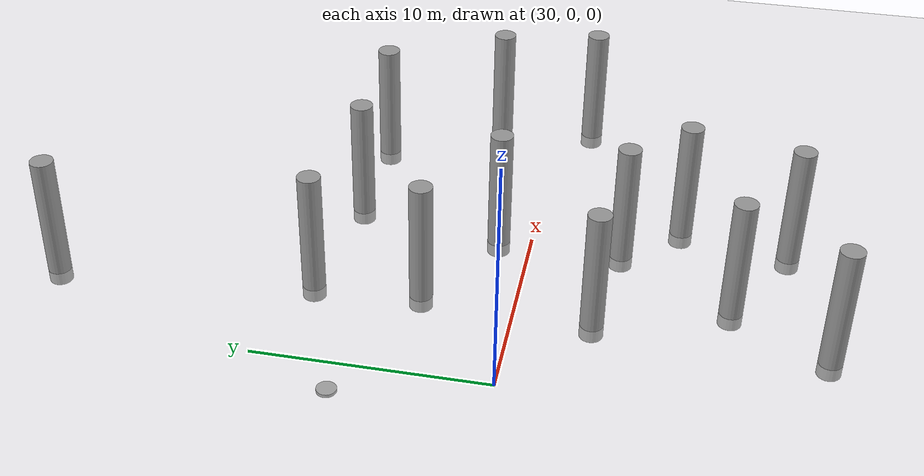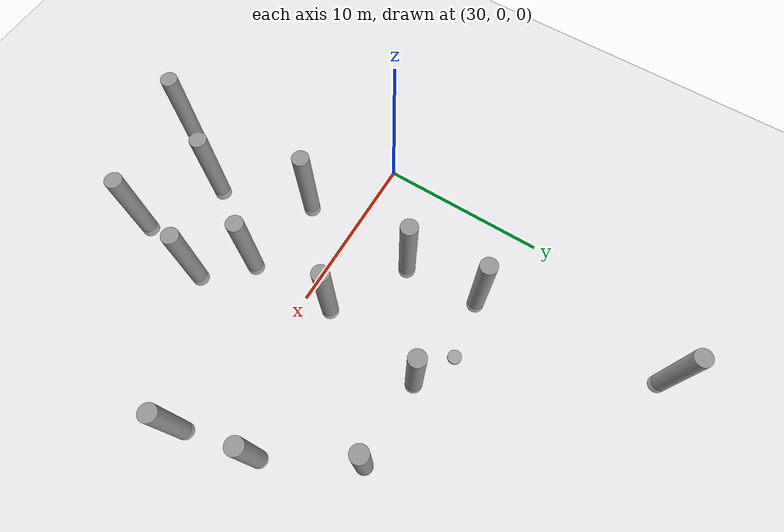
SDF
<sdf version="1.6">
 <world name="default">
  <model name="ground_plane">
   <static>1</static>
   <link name="link">
    <collision name="collision">
     <geometry><plane><normal>0 0 1</normal><size>200 200</size></plane></geometry>
     <surface><friction><ode><mu>100</mu><mu2>50</mu2></ode></friction></surface>
    </collision>
    <visual name="visual">
     <cast_shadows>0</cast_shadows>
     <geometry><plane><normal>0 0 1</normal><size>200 200</size></plane></geometry>
     <material>
      <script><uri>file://media/materials/scripts/gazebo.material</uri><name>Gazebo/Grey</name></script>
     </material>
    </visual>
    <gravity>0</gravity>
   </link>
  </model>
  <model name="unit_cylinder_0">
   <static>true</static>
   <pose>36.5123 8.86063 -7.43476 0 -0 0</pose>
   <link name="link">
    <inertial>
     <mass>1</mass>
     <inertia><ixx>0.145833</ixx><ixy>0</ixy><ixz>0</ixz><iyy>0.145833</iyy><iyz>0</iyz><izz>0.125</izz></inertia>
    </inertial>
    <collision name="collision">
     <geometry><cylinder><radius>0.5</radius><length>0.165744</length></cylinder></geometry>
     <surface><contact><collide_without_contact>1</collide_without_contact></contact></surface>
    </collision>
    <visual name="visual">
     <geometry><cylinder><radius>0.5</radius><length>0.165744</length></cylinder></geometry>
     <material>
      <script><name>Gazebo/Grey</name><uri>file://media/materials/scripts/gazebo.material</uri></script>
     </material>
    </visual>
    <gravity>0</gravity>
   </link>
  </model>
  <model name="unit_cylinder_0_clone_14_clone">
   <static>true</static>
   <pose>34.8945 8.63353 2.40172 0 -0 0.001073</pose>
   <link name="link">
    <inertial>
     <mass>1</mass>
     <inertia><ixx>0.145833</ixx><ixy>0</ixy><ixz>0</ixz><iyy>0.145833</iyy><iyz>0</iyz><izz>0.125</izz></inertia>
    </inertial>
    <collision name="collision">
     <geometry><cylinder><radius>0.5</radius><length>6.03342</length></cylinder></geometry>
     <surface><contact><collide_without_contact>1</collide_without_contact></contact></surface>
    </collision>
    <visual name="visual">
     <geometry><cylinder><radius>0.5</radius><length>6.03342</length></cylinder></geometry>
     <material>
      <script><name>Gazebo/Grey</name><uri>file://media/materials/scripts/gazebo.material</uri></script>
     </material>
    </visual>
    <gravity>0</gravity>
   </link>
  </model>
  <model name="unit_cylinder_0_clone_14_clone_0">
   <static>true</static>
   <pose>39.7254 1.47591 2.40172 0 -0 0.001073</pose>
   <link name="link">
    <inertial>
     <mass>1</mass>
     <inertia><ixx>0.145833</ixx><ixy>0</ixy><ixz>0</ixz><iyy>0.145833</iyy><iyz>0</iyz><izz>0.125</izz></inertia>
    </inertial>
    <collision name="collision">
     <geometry><cylinder><radius>0.5</radius><length>6.03342</length></cylinder></geometry>
     <surface><contact><collide_without_contact>1</collide_without_contact></contact></surface>
    </collision>
    <visual name="visual">
     <geometry><cylinder><radius>0.5</radius><length>6.03342</length></cylinder></geometry>
     <material>
      <script><name>Gazebo/Grey</name><uri>file://media/materials/scripts/gazebo.material</uri></script>
     </material>
    </visual>
    <gravity>0</gravity>
   </link>
  </model>
  <model name="unit_cylinder_0_clone_14_clone_1">
   <static>true</static>
   <pose>34.6294 -3.2579 2.40172 0 -0 0.001073</pose>
   <link name="link">
    <inertial>
     <mass>1</mass>
     <inertia><ixx>0.145833</ixx><ixy>0</ixy><ixz>0</ixz><iyy>0.145833</iyy><iyz>0</iyz><izz>0.125</izz></inertia>
    </inertial>
    <collision name="collision">
     <geometry><cylinder><radius>0.5</radius><length>6.03342</length></cylinder></geometry>
     <surface><contact><collide_without_contact>1</collide_without_contact></contact></surface>
    </collision>
    <visual name="visual">
     <geometry><cylinder><radius>0.5</radius><length>6.03342</length></cylinder></geometry>
     <material>
      <script><name>Gazebo/Grey</name><uri>file://media/materials/scripts/gazebo.material</uri></script>
     </material>
    </visual>
    <gravity>0</gravity>
   </link>
  </model>
  <model name="unit_cylinder_0_clone_14_clone_2">
   <static>true</static>
   <pose>35.1198 4.01966 2.40172 0 -0 0.001073</pose>
   <link name="link">
    <inertial>
     <mass>1</mass>
     <inertia><ixx>0.145833</ixx><ixy>0</ixy><ixz>0</ixz><iyy>0.145833</iyy><iyz>0</iyz><izz>0.125</izz></inertia>
    </inertial>
    <collision name="collision">
     <geometry><cylinder><radius>0.5</radius><length>6.03342</length></cylinder></geometry>
     <surface><contact><collide_without_contact>1</collide_without_contact></contact></surface>
    </collision>
    <visual name="visual">
     <geometry><cylinder><radius>0.5</radius><length>6.03342</length></cylinder></geometry>
     <material>
      <script><name>Gazebo/Grey</name><uri>file://media/materials/scripts/gazebo.material</uri></script>
     </material>
    </visual>
    <gravity>0</gravity>
   </link>
  </model>
  <model name="unit_cylinder_0_clone_14_clone_3">
   <static>true</static>
   <pose>40.9597 7.945 2.40172 0 -0 0.001073</pose>
   <link name="link">
    <inertial>
     <mass>1</mass>
     <inertia><ixx>0.145833</ixx><ixy>0</ixy><ixz>0</ixz><iyy>0.145833</iyy><iyz>0</iyz><izz>0.125</izz></inertia>
    </inertial>
    <collision name="collision">
     <geometry><cylinder><radius>0.5</radius><length>6.03342</length></cylinder></geometry>
     <surface><contact><collide_without_contact>1</collide_without_contact></contact></surface>
    </collision>
    <visual name="visual">
     <geometry><cylinder><radius>0.5</radius><length>6.03342</length></cylinder></geometry>
     <material>
      <script><name>Gazebo/Grey</name><uri>file://media/materials/scripts/gazebo.material</uri></script>
     </material>
    </visual>
    <gravity>0</gravity>
   </link>
  </model>
  <model name="unit_cylinder_0_clone_14_clone_4">
   <static>true</static>
   <pose>48.8594 2.85128 2.40172 0 -0 0.001073</pose>
   <link name="link">
    <inertial>
     <mass>1</mass>
     <inertia><ixx>0.145833</ixx><ixy>0</ixy><ixz>0</ixz><iyy>0.145833</iyy><iyz>0</iyz><izz>0.125</izz></inertia>
    </inertial>
    <collision name="collision">
     <geometry><cylinder><radius>0.5</radius><length>6.03342</length></cylinder></geometry>
     <surface><contact><collide_without_contact>1</collide_without_contact></contact></surface>
    </collision>
    <visual name="visual">
     <geometry><cylinder><radius>0.5</radius><length>6.03342</length></cylinder></geometry>
     <material>
      <script><name>Gazebo/Grey</name><uri>file://media/materials/scripts/gazebo.material</uri></script>
     </material>
    </visual>
    <gravity>0</gravity>
   </link>
  </model>
  <model name="unit_cylinder_0_clone_14_clone_5">
   <static>true</static>
   <pose>42.0529 -6.41265 2.40172 0 -0 0.001073</pose>
   <link name="link">
    <inertial>
     <mass>1</mass>
     <inertia><ixx>0.145833</ixx><ixy>0</ixy><ixz>0</ixz><iyy>0.145833</iyy><iyz>0</iyz><izz>0.125</izz></inertia>
    </inertial>
    <collision name="collision">
     <geometry><cylinder><radius>0.5</radius><length>6.03342</length></cylinder></geometry>
     <surface><contact><collide_without_contact>1</collide_without_contact></contact></surface>
    </collision>
    <visual name="visual">
     <geometry><cylinder><radius>0.5</radius><length>6.03342</length></cylinder></geometry>
     <material>
      <script><name>Gazebo/Grey</name><uri>file://media/materials/scripts/gazebo.material</uri></script>
     </material>
    </visual>
    <gravity>0</gravity>
   </link>
  </model>
  <model name="unit_cylinder_0_clone_14_clone_6">
   <static>true</static>
   <pose>36.6057 -8.82465 2.40172 0 -0 0.001073</pose>
   <link name="link">
    <inertial>
     <mass>1</mass>
     <inertia><ixx>0.145833</ixx><ixy>0</ixy><ixz>0</ixz><iyy>0.145833</iyy><iyz>0</iyz><izz>0.125</izz></inertia>
    </inertial>
    <collision name="collision">
     <geometry><cylinder><radius>0.5</radius><length>6.03342</length></cylinder></geometry>
     <surface><contact><collide_without_contact>1</collide_without_contact></contact></surface>
    </collision>
    <visual name="visual">
     <geometry><cylinder><radius>0.5</radius><length>6.03342</length></cylinder></geometry>
     <material>
      <script><name>Gazebo/Grey</name><uri>file://media/materials/scripts/gazebo.material</uri></script>
     </material>
    </visual>
    <gravity>0</gravity>
   </link>
  </model>
  <model name="unit_cylinder_0_clone_14_clone_7">
   <static>true</static>
   <pose>49.7522 -1.51213 2.40172 0 -0 0.001073</pose>
   <link name="link">
    <inertial>
     <mass>1</mass>
     <inertia><ixx>0.145833</ixx><ixy>0</ixy><ixz>0</ixz><iyy>0.145833</iyy><iyz>0</iyz><izz>0.125</izz></inertia>
    </inertial>
    <collision name="collision">
     <geometry><cylinder><radius>0.5</radius><length>6.03342</length></cylinder></geometry>
     <surface><contact><collide_without_contact>1</collide_without_contact></contact></surface>
    </collision>
    <visual name="visual">
     <geometry><cylinder><radius>0.5</radius><length>6.03342</length></cylinder></geometry>
     <material>
      <script><name>Gazebo/Grey</name><uri>file://media/materials/scripts/gazebo.material</uri></script>
     </material>
    </visual>
    <gravity>0</gravity>
   </link>
  </model>
  <model name="unit_cylinder_0_clone_14_clone_8">
   <static>true</static>
   <pose>46.1829 7.9359 2.40172 0 -0 0.001073</pose>
   <link name="link">
    <inertial>
     <mass>1</mass>
     <inertia><ixx>0.145833</ixx><ixy>0</ixy><ixz>0</ixz><iyy>0.145833</iyy><iyz>0</iyz><izz>0.125</izz></inertia>
    </inertial>
    <collision name="collision">
     <geometry><cylinder><radius>0.5</radius><length>6.03342</length></cylinder></geometry>
     <surface><contact><collide_without_contact>1</collide_without_contact></contact></surface>
    </collision>
    <visual name="visual">
     <geometry><cylinder><radius>0.5</radius><length>6.03342</length></cylinder></geometry>
     <material>
      <script><name>Gazebo/Grey</name><uri>file://media/materials/scripts/gazebo.material</uri></script>
     </material>
    </visual>
    <gravity>0</gravity>
   </link>
  </model>
  <model name="unit_cylinder_0_clone_14_clone_11">
   <static>true</static>
   <pose>39.7289 -3.95269 2.40172 0 -0 0.001073</pose>
   <link name="link">
    <inertial>
     <mass>1</mass>
     <inertia><ixx>0.145833</ixx><ixy>0</ixy><ixz>0</ixz><iyy>0.145833</iyy><iyz>0</iyz><izz>0.125</izz></inertia>
    </inertial>
    <collision name="collision">
     <geometry><cylinder><radius>0.5</radius><length>6.03342</length></cylinder></geometry>
     <surface><contact><collide_without_contact>1</collide_without_contact></contact></surface>
    </collision>
    <visual name="visual">
     <geometry><cylinder><radius>0.5</radius><length>6.03342</length></cylinder></geometry>
     <material>
      <script><name>Gazebo/Grey</name><uri>file://media/materials/scripts/gazebo.material</uri></script>
     </material>
    </visual>
    <gravity>0</gravity>
   </link>
  </model>
  <model name="unit_cylinder_0_clone_14_clone_12">
   <static>true</static>
   <pose>34.1973 -12.8246 2.40172 0 -0 0.001073</pose>
   <link name="link">
    <inertial>
     <mass>1</mass>
     <inertia><ixx>0.145833</ixx><ixy>0</ixy><ixz>0</ixz><iyy>0.145833</iyy><iyz>0</iyz><izz>0.125</izz></inertia>
    </inertial>
    <collision name="collision">
     <geometry><cylinder><radius>0.5</radius><length>6.03342</length></cylinder></geometry>
     <surface><contact><collide_without_contact>1</collide_without_contact></contact></surface>
    </collision>
    <visual name="visual">
     <geometry><cylinder><radius>0.5</radius><length>6.03342</length></cylinder></geometry>
     <material>
      <script><name>Gazebo/Grey</name><uri>file://media/materials/scripts/gazebo.material</uri></script>
     </material>
    </visual>
    <gravity>0</gravity>
   </link>
  </model>
  <model name="unit_cylinder_0_clone_14_clone_15">
   <static>true</static>
   <pose>33.7515 19.7444 2.40172 0 -0 0.001073</pose>
   <link name="link">
    <inertial>
     <mass>1</mass>
     <inertia><ixx>0.145833</ixx><ixy>0</ixy><ixz>0</ixz><iyy>0.145833</iyy><iyz>0</iyz><izz>0.125</izz></inertia>
    </inertial>
    <collision name="collision">
     <geometry><cylinder><radius>0.5</radius><length>6.03342</length></cylinder></geometry>
     <surface><contact><collide_without_contact>1</collide_without_contact></contact></surface>
    </collision>
    <visual name="visual">
     <geometry><cylinder><radius>0.5</radius><length>6.03342</length></cylinder></geometry>
     <material>
      <script><name>Gazebo/Grey</name><uri>file://media/materials/scripts/gazebo.material</uri></script>
     </material>
    </visual>
    <gravity>0</gravity>
   </link>
  </model>
  <model name="unit_cylinder_0_clone_14_clone_17">
   <static>true</static>
   <pose>41.0492 -11.1268 2.40172 0 -0 0.001073</pose>
   <link name="link">
    <inertial>
     <mass>1</mass>
     <inertia><ixx>0.145833</ixx><ixy>0</ixy><ixz>0</ixz><iyy>0.145833</iyy><iyz>0</iyz><izz>0.125</izz></inertia>
    </inertial>
    <collision name="collision">
     <geometry><cylinder><radius>0.5</radius><length>6.03342</length></cylinder></geometry>
     <surface><contact><collide_without_contact>1</collide_without_contact></contact></surface>
    </collision>
    <visual name="visual">
     <geometry><cylinder><radius>0.5</radius><length>6.03342</length></cylinder></geometry>
     <material>
      <script><name>Gazebo/Grey</name><uri>file://media/materials/scripts/gazebo.material</uri></script>
     </material>
    </visual>
    <gravity>0</gravity>
   </link>
  </model>
 </world>
</sdf>
